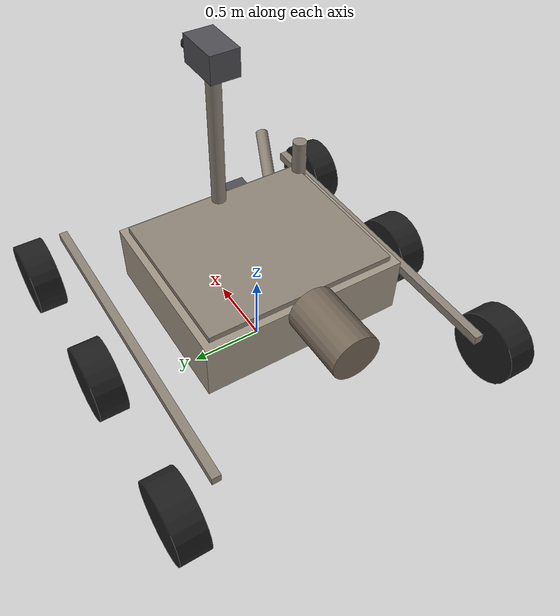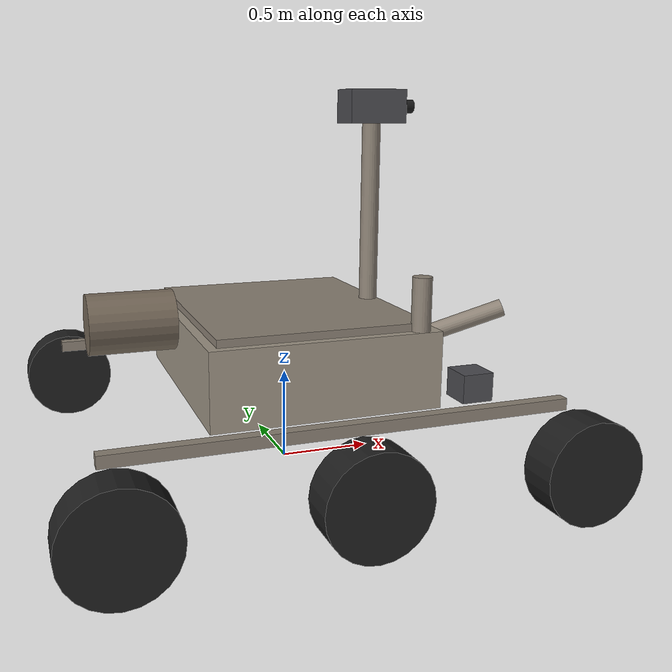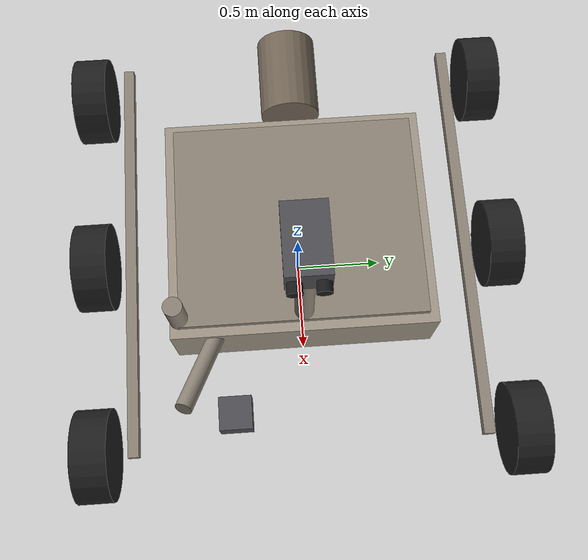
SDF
<?xml version="1.0"?>
<sdf version="1.9">
  <model name="perseverance">

    <!-- ===== Body: every non-rotating piece is a visual on this link.
         Mass + inertia approximate the real rover's 899 kg minus the
         six wheels at ~30 kg each. ===== -->
    <link name="body">
      <pose>0 0 0.65 0 0 0</pose>
      <inertial>
        <mass>700</mass>
        <inertia>
          <ixx>120</ixx><iyy>140</iyy><izz>200</izz>
          <ixy>0</ixy><ixz>0</ixz><iyz>0</iyz>
        </inertia>
      </inertial>
      <collision name="deck_col">
        <geometry><box><size>1.20 1.40 0.40</size></box></geometry>
      </collision>

      <sensor name="bumper" type="contact">
        <update_rate>10</update_rate>
        <contact>
          <collision>deck_col</collision>
          <topic>/perseverance/contacts</topic>
        </contact>
      </sensor>

      <visual name="deck">
        <geometry><box><size>1.20 1.40 0.40</size></box></geometry>
        <material>
          <ambient>0.32 0.30 0.27 1</ambient>
          <diffuse>0.62 0.58 0.52 1</diffuse>
          <specular>0.30 0.30 0.30 1</specular>
        </material>
      </visual>
      <visual name="top_deck">
        <pose>0 0 0.22 0 0 0</pose>
        <geometry><box><size>1.10 1.30 0.04</size></box></geometry>
        <material><ambient>0.30 0.28 0.25 1</ambient><diffuse>0.55 0.51 0.46 1</diffuse></material>
      </visual>

      <!-- RTG -->
      <visual name="rtg">
        <pose>-0.85 0 0.20 0 1.5708 0</pose>
        <geometry><cylinder><radius>0.16</radius><length>0.45</length></cylinder></geometry>
        <material>
          <ambient>0.25 0.22 0.18 1</ambient>
          <diffuse>0.45 0.40 0.34 1</diffuse>
          <specular>0.25 0.25 0.25 1</specular>
        </material>
      </visual>

      <!-- Mast pole + camera head -->
      <visual name="mast_pole">
        <pose>0.50 0 0.65 0 0 0</pose>
        <geometry><cylinder><radius>0.05</radius><length>1.20</length></cylinder></geometry>
        <material><ambient>0.30 0.28 0.25 1</ambient><diffuse>0.55 0.51 0.46 1</diffuse></material>
      </visual>
      <visual name="mast_head">
        <pose>0.50 0 1.30 0 0 0</pose>
        <geometry><box><size>0.32 0.20 0.18</size></box></geometry>
        <material><ambient>0.20 0.20 0.22 1</ambient><diffuse>0.30 0.30 0.32 1</diffuse></material>
      </visual>
      <visual name="cam_left">
        <pose>0.68 0.06 1.30 0 1.5708 0</pose>
        <geometry><cylinder><radius>0.035</radius><length>0.06</length></cylinder></geometry>
        <material><ambient>0.05 0.05 0.05 1</ambient><diffuse>0.10 0.10 0.10 1</diffuse><specular>0.6 0.6 0.6 1</specular></material>
      </visual>
      <visual name="cam_right">
        <pose>0.68 -0.06 1.30 0 1.5708 0</pose>
        <geometry><cylinder><radius>0.035</radius><length>0.06</length></cylinder></geometry>
        <material><ambient>0.05 0.05 0.05 1</ambient><diffuse>0.10 0.10 0.10 1</diffuse><specular>0.6 0.6 0.6 1</specular></material>
      </visual>

      <!-- Stowed robotic arm -->
      <visual name="arm_seg_1">
        <pose>0.50 -0.65 0.20 0 0 -0.4</pose>
        <geometry><cylinder><radius>0.05</radius><length>0.55</length></cylinder></geometry>
        <material><ambient>0.30 0.28 0.25 1</ambient><diffuse>0.55 0.51 0.46 1</diffuse></material>
      </visual>
      <visual name="arm_seg_2">
        <pose>0.78 -0.55 0.20 0 1.2 -0.4</pose>
        <geometry><cylinder><radius>0.045</radius><length>0.45</length></cylinder></geometry>
        <material><ambient>0.30 0.28 0.25 1</ambient><diffuse>0.55 0.51 0.46 1</diffuse></material>
      </visual>
      <visual name="arm_turret">
        <pose>0.95 -0.40 -0.20 0 0 0</pose>
        <geometry><box><size>0.18 0.18 0.16</size></box></geometry>
        <material><ambient>0.20 0.20 0.22 1</ambient><diffuse>0.30 0.30 0.32 1</diffuse></material>
      </visual>

      <!-- Rocker rails (cosmetic) -->
      <visual name="rocker_l">
        <pose>0 0.95 -0.15 0 0 0</pose>
        <geometry><box><size>2.30 0.06 0.06</size></box></geometry>
        <material><ambient>0.30 0.28 0.25 1</ambient><diffuse>0.55 0.51 0.46 1</diffuse></material>
      </visual>
      <visual name="rocker_r">
        <pose>0 -0.95 -0.15 0 0 0</pose>
        <geometry><box><size>2.30 0.06 0.06</size></box></geometry>
        <material><ambient>0.30 0.28 0.25 1</ambient><diffuse>0.55 0.51 0.46 1</diffuse></material>
      </visual>
    </link>

    <link name="wheel_fl">
      <pose>1.10 1.20 0.26 0 0 0</pose>
      <inertial><mass>30</mass>
        <inertia><ixx>1.6</ixx><iyy>1.0</iyy><izz>1.6</izz></inertia>
      </inertial>
      <collision name="c"><pose>0 0 0 1.5708 0 0</pose>
        <geometry><cylinder><radius>0.26</radius><length>0.20</length></cylinder></geometry>
      </collision>
      <visual name="v"><pose>0 0 0 1.5708 0 0</pose>
        <geometry><cylinder><radius>0.26</radius><length>0.20</length></cylinder></geometry>
        <material><ambient>0.06 0.06 0.06 1</ambient><diffuse>0.12 0.12 0.12 1</diffuse></material>
      </visual>
    </link>
    <link name="wheel_ml">
      <pose>0.00 1.20 0.26 0 0 0</pose>
      <inertial><mass>30</mass>
        <inertia><ixx>1.6</ixx><iyy>1.0</iyy><izz>1.6</izz></inertia>
      </inertial>
      <collision name="c"><pose>0 0 0 1.5708 0 0</pose>
        <geometry><cylinder><radius>0.26</radius><length>0.20</length></cylinder></geometry>
      </collision>
      <visual name="v"><pose>0 0 0 1.5708 0 0</pose>
        <geometry><cylinder><radius>0.26</radius><length>0.20</length></cylinder></geometry>
        <material><ambient>0.06 0.06 0.06 1</ambient><diffuse>0.12 0.12 0.12 1</diffuse></material>
      </visual>
    </link>
    <link name="wheel_rl">
      <pose>-1.10 1.20 0.26 0 0 0</pose>
      <inertial><mass>30</mass>
        <inertia><ixx>1.6</ixx><iyy>1.0</iyy><izz>1.6</izz></inertia>
      </inertial>
      <collision name="c"><pose>0 0 0 1.5708 0 0</pose>
        <geometry><cylinder><radius>0.26</radius><length>0.20</length></cylinder></geometry>
      </collision>
      <visual name="v"><pose>0 0 0 1.5708 0 0</pose>
        <geometry><cylinder><radius>0.26</radius><length>0.20</length></cylinder></geometry>
        <material><ambient>0.06 0.06 0.06 1</ambient><diffuse>0.12 0.12 0.12 1</diffuse></material>
      </visual>
    </link>
    <link name="wheel_fr">
      <pose>1.10 -1.20 0.26 0 0 0</pose>
      <inertial><mass>30</mass>
        <inertia><ixx>1.6</ixx><iyy>1.0</iyy><izz>1.6</izz></inertia>
      </inertial>
      <collision name="c"><pose>0 0 0 1.5708 0 0</pose>
        <geometry><cylinder><radius>0.26</radius><length>0.20</length></cylinder></geometry>
      </collision>
      <visual name="v"><pose>0 0 0 1.5708 0 0</pose>
        <geometry><cylinder><radius>0.26</radius><length>0.20</length></cylinder></geometry>
        <material><ambient>0.06 0.06 0.06 1</ambient><diffuse>0.12 0.12 0.12 1</diffuse></material>
      </visual>
    </link>
    <link name="wheel_mr">
      <pose>0.00 -1.20 0.26 0 0 0</pose>
      <inertial><mass>30</mass>
        <inertia><ixx>1.6</ixx><iyy>1.0</iyy><izz>1.6</izz></inertia>
      </inertial>
      <collision name="c"><pose>0 0 0 1.5708 0 0</pose>
        <geometry><cylinder><radius>0.26</radius><length>0.20</length></cylinder></geometry>
      </collision>
      <visual name="v"><pose>0 0 0 1.5708 0 0</pose>
        <geometry><cylinder><radius>0.26</radius><length>0.20</length></cylinder></geometry>
        <material><ambient>0.06 0.06 0.06 1</ambient><diffuse>0.12 0.12 0.12 1</diffuse></material>
      </visual>
    </link>
    <link name="wheel_rr">
      <pose>-1.10 -1.20 0.26 0 0 0</pose>
      <inertial><mass>30</mass>
        <inertia><ixx>1.6</ixx><iyy>1.0</iyy><izz>1.6</izz></inertia>
      </inertial>
      <collision name="c"><pose>0 0 0 1.5708 0 0</pose>
        <geometry><cylinder><radius>0.26</radius><length>0.20</length></cylinder></geometry>
      </collision>
      <visual name="v"><pose>0 0 0 1.5708 0 0</pose>
        <geometry><cylinder><radius>0.26</radius><length>0.20</length></cylinder></geometry>
        <material><ambient>0.06 0.06 0.06 1</ambient><diffuse>0.12 0.12 0.12 1</diffuse></material>
      </visual>
    </link>

    <!-- ===== Six revolute joints. Axis 0,1,0 in the child link
         frame is the wheel's spin axis (along world Y). ===== -->
    <joint name="wheel_fl_joint" type="revolute">
      <parent>body</parent><child>wheel_fl</child>
      <axis><xyz>0 1 0</xyz></axis>
    </joint>
    <joint name="wheel_ml_joint" type="revolute">
      <parent>body</parent><child>wheel_ml</child>
      <axis><xyz>0 1 0</xyz></axis>
    </joint>
    <joint name="wheel_rl_joint" type="revolute">
      <parent>body</parent><child>wheel_rl</child>
      <axis><xyz>0 1 0</xyz></axis>
    </joint>
    <joint name="wheel_fr_joint" type="revolute">
      <parent>body</parent><child>wheel_fr</child>
      <axis><xyz>0 1 0</xyz></axis>
    </joint>
    <joint name="wheel_mr_joint" type="revolute">
      <parent>body</parent><child>wheel_mr</child>
      <axis><xyz>0 1 0</xyz></axis>
    </joint>
    <joint name="wheel_rr_joint" type="revolute">
      <parent>body</parent><child>wheel_rr</child>
      <axis><xyz>0 1 0</xyz></axis>
    </joint>

    <!-- ===== DiffDrive: groups all 3 left + all 3 right wheels.
         Topic /model/perseverance/cmd_vel; the entrypoint bridges
         that to ROS 2 /cmd_vel for moon.sdf. ===== -->
    <plugin filename="ignition-gazebo-diff-drive-system"
            name="ignition::gazebo::systems::DiffDrive">
      <left_joint>wheel_fl_joint</left_joint>
      <left_joint>wheel_ml_joint</left_joint>
      <left_joint>wheel_rl_joint</left_joint>
      <right_joint>wheel_fr_joint</right_joint>
      <right_joint>wheel_mr_joint</right_joint>
      <right_joint>wheel_rr_joint</right_joint>
      <wheel_separation>2.40</wheel_separation>
      <wheel_radius>0.26</wheel_radius>
      <topic>/model/perseverance/cmd_vel</topic>
      <odom_publish_frequency>20</odom_publish_frequency>
      <frame_id>perseverance/odom</frame_id>
      <child_frame_id>perseverance/base_link</child_frame_id>
      <max_linear_acceleration>2</max_linear_acceleration>
      <max_angular_acceleration>3</max_angular_acceleration>
    </plugin>
  </model>
</sdf>
